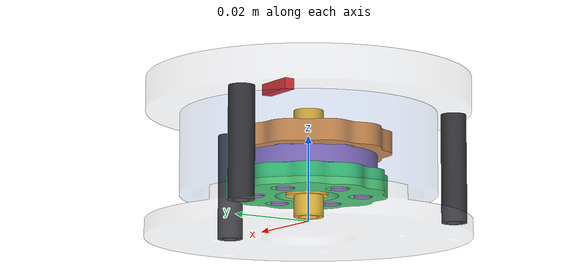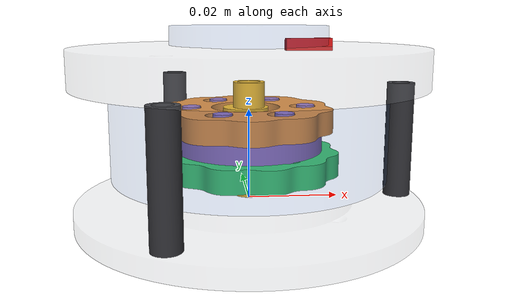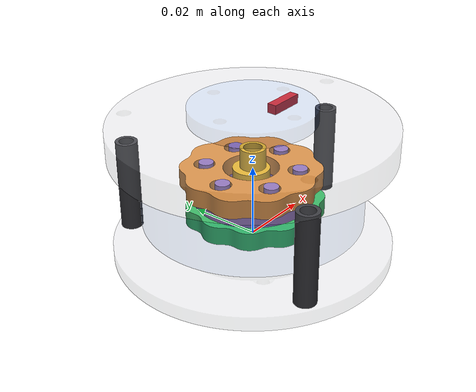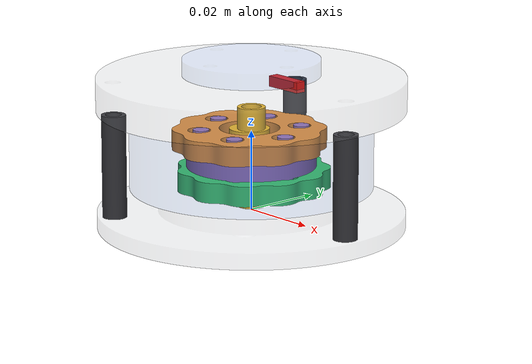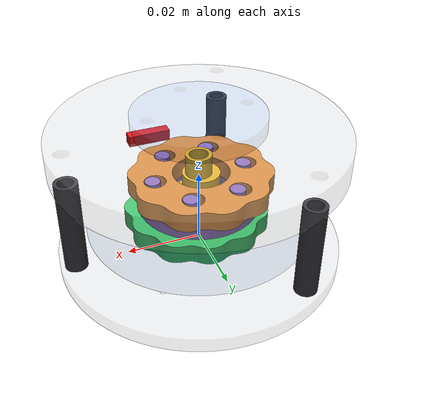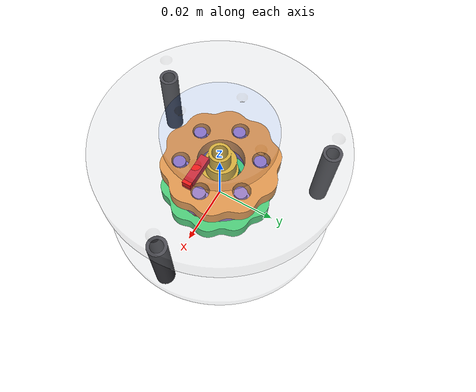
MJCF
<mujoco model="cycloidal_2stage_viewer">

  <compiler meshdir="out" angle="degree" autolimits="true"/>
  <option gravity="0 0 0"/>
  <visual>
    <global offwidth="900" offheight="480"/>
  </visual>

  <asset>
    <mesh name="base"         file="base.stl"         scale="0.001 0.001 0.001"/>
    <mesh name="eccentric"    file="eccentric.stl"    scale="0.001 0.001 0.001"/>
    <mesh name="disc1"        file="disc1.stl"        scale="0.001 0.001 0.001"/>
    <mesh name="disc2"        file="disc2.stl"        scale="0.001 0.001 0.001"/>
    <mesh name="central_disc" file="central_disc.stl" scale="0.001 0.001 0.001"/>
    <mesh name="output_drum"  file="output_drum.stl"  scale="0.001 0.001 0.001"/>
    <mesh name="yoke"         file="yoke.stl"         scale="0.001 0.001 0.001"/>
    <mesh name="post"         file="post.stl"         scale="0.001 0.001 0.001"/>
    <material name="ground" rgba="0.70 0.72 0.75 0.12"/>  <!-- base + yoke: translucent -->
    <material name="post"   rgba="0.20 0.20 0.22 1"/>
    <material name="drum"   rgba="0.30 0.47 0.78 0.16"/>  <!-- output: tinted, see-through-->
    <material name="ecc"    rgba="0.95 0.72 0.10 1"/>     <!-- input: bright, opaque      -->
    <material name="disc1"  rgba="0.20 0.80 0.40 1"/>
    <material name="disc2"  rgba="0.90 0.55 0.20 1"/>
    <material name="cd"     rgba="0.56 0.42 0.75 1"/>
    <material name="mark"   rgba="0.90 0.10 0.10 1"/>
  </asset>

  <worldbody>
    <light pos="0.06 -0.06 0.16" dir="-0.4 0.4 -1"/>
    <camera name="iso" pos="0.066 -0.066 0.055" xyaxes="0.7 0.7 0 -0.42 0.42 0.84"/>

    <!-- grounded structure: base + external yoke + 3 posts -->
    <geom type="mesh" mesh="base" material="ground" contype="0" conaffinity="0"/>
    <geom type="mesh" mesh="yoke" material="ground" contype="0" conaffinity="0"/>
    <geom type="mesh" mesh="post" material="post" pos="0.034 0 0"    contype="0" conaffinity="0"/>
    <geom type="mesh" mesh="post" material="post" pos="-0.017 0.0294 0" contype="0" conaffinity="0"/>
    <geom type="mesh" mesh="post" material="post" pos="-0.017 -0.0294 0" contype="0" conaffinity="0"/>

    <!-- eccentric input: spins 121x about the main axis (base at z_nsb = 1 mm) -->
    <body name="ecc_body" pos="0 0 0.001">
      <joint name="joint_ecc" type="hinge" axis="0 0 1"/>
      <geom type="mesh" mesh="eccentric" material="ecc" contype="0" conaffinity="0"/>

      <!-- disc1 rides cam1 (+E): orbits at radius E in the eccentric frame, spins slowly -->
      <body name="disc1_body" pos="0.0007 0 0.005">
        <joint name="joint_disc1" type="hinge" axis="0 0 1"/>
        <geom type="mesh" mesh="disc1" material="disc1" contype="0" conaffinity="0"/>
        <geom type="box" pos="0.013 0 0.0025" size="0.004 0.001 0.001" material="mark"
              contype="0" conaffinity="0"/>
      </body>

      <!-- disc2 rides cam2 (-E), 180 deg opposed for balance -->
      <body name="disc2_body" pos="-0.0007 0 0.0146">
        <joint name="joint_disc2" type="hinge" axis="0 0 1"/>
        <geom type="mesh" mesh="disc2" material="disc2" contype="0" conaffinity="0"/>
      </body>
    </body>

    <!-- central disc: the coupler, spins at -1/z1 of the input about the main axis -->
    <body name="cd_body" pos="0 0 0">
      <joint name="joint_cd" type="hinge" axis="0 0 1"/>
      <geom type="mesh" mesh="central_disc" material="cd" contype="0" conaffinity="0"/>
    </body>

    <!-- output drum (ring2 body): 1x slow output, flange exits the yoke -->
    <body name="drum_body" pos="0 0 0">
      <joint name="joint_out" type="hinge" axis="0 0 1"/>
      <geom type="mesh" mesh="output_drum" material="drum" contype="0" conaffinity="0"/>
      <geom type="box" pos="0.013 0 0.0341" size="0.005 0.0013 0.0013" material="mark"
            contype="0" conaffinity="0"/>
    </body>
  </worldbody>
</mujoco>
